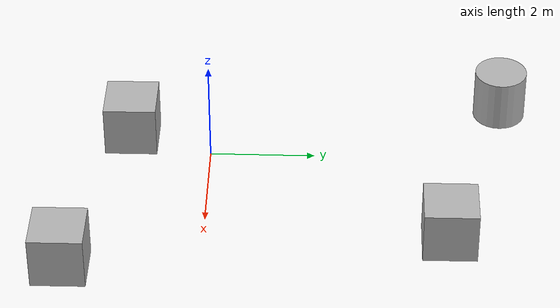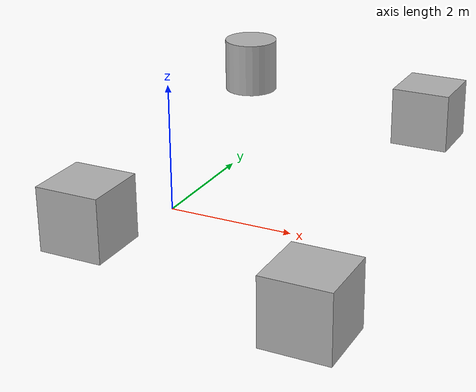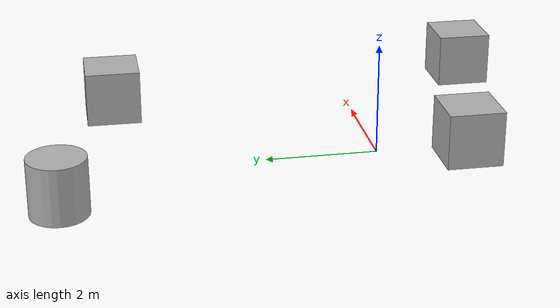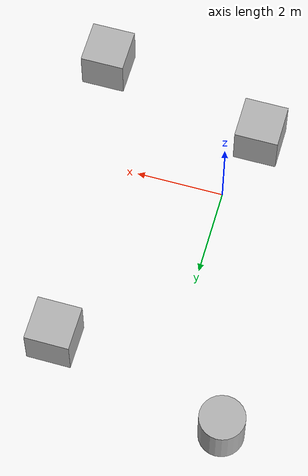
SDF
<?xml version="1.0"?>
<sdf version='1.9'>
  <world name='default'>

    <gravity>0 0 -9.8</gravity>
    <magnetic_field>6e-06 2.3e-05 -4.2e-05</magnetic_field>
    <atmosphere type='adiabatic'/>
    <physics type='ode'>
      <max_step_size>0.001</max_step_size>
      <real_time_factor>1</real_time_factor>
      <real_time_update_rate>1000</real_time_update_rate>
    </physics>
    <scene>
      <ambient>0.4 0.4 0.4 1</ambient>
      <background>0.7 0.7 0.7 1</background>
      <shadows>true</shadows>
    </scene>
    <model name='box'>
      <pose>2.56081 4.52324 0.5 0 -0 0</pose>
      <link name='box_link'>
        <inertial>
          <inertia>
            <ixx>0.16666</ixx>
            <ixy>0</ixy>
            <ixz>0</ixz>
            <iyy>0.16666</iyy>
            <iyz>0</iyz>
            <izz>0.16666</izz>
          </inertia>
          <mass>1</mass>
          <pose>0 0 0 0 -0 0</pose>
        </inertial>
        <collision name='box_collision'>
          <geometry>
            <box>
              <size>1 1 1</size>
            </box>
          </geometry>
          <surface>
            <friction>
              <ode/>
            </friction>
            <bounce/>
            <contact/>
          </surface>
        </collision>
        <visual name='box_visual'>
          <geometry>
            <box>
              <size>1 1 1</size>
            </box>
          </geometry>
          <material>
            <ambient>0.3 0.3 0.3 1</ambient>
            <diffuse>0.7 0.7 0.7 1</diffuse>
            <specular>1 1 1 1</specular>
          </material>
        </visual>
        <pose>0 0 0 0 -0 0</pose>
        <enable_wind>false</enable_wind>
      </link>
      <static>false</static>
      <self_collide>false</self_collide>
    </model>
    <model name='box_0'>
      <pose>3.4498 -2.52447 0.5 0 -0 0</pose>
      <link name='box_link'>
        <inertial>
          <inertia>
            <ixx>0.16666</ixx>
            <ixy>0</ixy>
            <ixz>0</ixz>
            <iyy>0.16666</iyy>
            <iyz>0</iyz>
            <izz>0.16666</izz>
          </inertia>
          <mass>1</mass>
          <pose>0 0 0 0 -0 0</pose>
        </inertial>
        <collision name='box_collision'>
          <geometry>
            <box>
              <size>1 1 1</size>
            </box>
          </geometry>
          <surface>
            <friction>
              <ode/>
            </friction>
            <bounce/>
            <contact/>
          </surface>
        </collision>
        <visual name='box_visual'>
          <geometry>
            <box>
              <size>1 1 1</size>
            </box>
          </geometry>
          <material>
            <ambient>0.3 0.3 0.3 1</ambient>
            <diffuse>0.7 0.7 0.7 1</diffuse>
            <specular>1 1 1 1</specular>
          </material>
        </visual>
        <pose>0 0 0 0 -0 0</pose>
        <enable_wind>false</enable_wind>
      </link>
      <static>false</static>
      <self_collide>false</self_collide>
    </model>
    <model name='box_1'>
      <pose>-0.473812 -1.53795 0.5 0 -0 0</pose>
      <link name='box_link'>
        <inertial>
          <inertia>
            <ixx>0.16666</ixx>
            <ixy>0</ixy>
            <ixz>0</ixz>
            <iyy>0.16666</iyy>
            <iyz>0</iyz>
            <izz>0.16666</izz>
          </inertia>
          <mass>1</mass>
          <pose>0 0 0 0 -0 0</pose>
        </inertial>
        <collision name='box_collision'>
          <geometry>
            <box>
              <size>1 1 1</size>
            </box>
          </geometry>
          <surface>
            <friction>
              <ode/>
            </friction>
            <bounce/>
            <contact/>
          </surface>
        </collision>
        <visual name='box_visual'>
          <geometry>
            <box>
              <size>1 1 1</size>
            </box>
          </geometry>
          <material>
            <ambient>0.3 0.3 0.3 1</ambient>
            <diffuse>0.7 0.7 0.7 1</diffuse>
            <specular>1 1 1 1</specular>
          </material>
        </visual>
        <pose>0 0 0 0 -0 0</pose>
        <enable_wind>false</enable_wind>
      </link>
      <static>false</static>
      <self_collide>false</self_collide>
    </model>
    <model name='cylinder'>
      <pose>-1.47993 5.61708 0.5 0 -0 0</pose>
      <link name='cylinder_link'>
        <inertial>
          <inertia>
            <ixx>0.14580000000000001</ixx>
            <ixy>0</ixy>
            <ixz>0</ixz>
            <iyy>0.14580000000000001</iyy>
            <iyz>0</iyz>
            <izz>0.125</izz>
          </inertia>
          <mass>1</mass>
          <pose>0 0 0 0 -0 0</pose>
        </inertial>
        <collision name='cylinder_collision'>
          <geometry>
            <cylinder>
              <radius>0.5</radius>
              <length>1</length>
            </cylinder>
          </geometry>
          <surface>
            <friction>
              <ode/>
            </friction>
            <bounce/>
            <contact/>
          </surface>
        </collision>
        <visual name='cylinder_visual'>
          <geometry>
            <cylinder>
              <radius>0.5</radius>
              <length>1</length>
            </cylinder>
          </geometry>
          <material>
            <ambient>0.3 0.3 0.3 1</ambient>
            <diffuse>0.7 0.7 0.7 1</diffuse>
            <specular>1 1 1 1</specular>
          </material>
        </visual>
        <pose>0 0 0 0 -0 0</pose>
        <enable_wind>false</enable_wind>
      </link>
      <static>false</static>
      <self_collide>false</self_collide>
    </model>
  </world>
</sdf>
